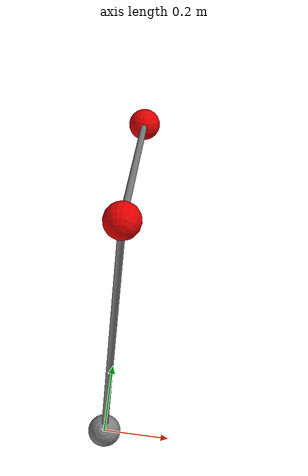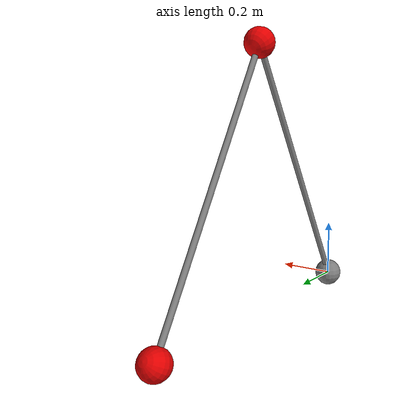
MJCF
<mujoco>
  <option gravity="0 0 -10" timestep="0.001">
  </option>

  <default>
    <geom rgba=".9 .0 .0 1"/>
  </default>

  <worldbody>
    <light pos="100 0 0" dir="-1 0 0" diffuse="1 1 1" cutoff="180"/>
    <site type="sphere" size="0.05" name="origin"/>

    <body pos="0 0 0" euler="60 0 0">
      <geom type="sphere" size="0.05" mass="1" pos="0 1 0"/>
      <site type="cylinder" size="0.01 0.5" pos="0 0.5 0" euler="90 0 0"/>
      <joint type="hinge" axis="1 0 0" pos="0 0 0"/>

      <body pos="0 1 0" euler="-120 0 0">
        <geom type="sphere" size="0.05" mass="1" pos="0 1 0"/>
        <site type="sphere" size="0.01" name="second"/>
        <site type="cylinder" size="0.01 0.5" pos="0 0.5 0" euler="90 0 0"/>
        <joint type="hinge" axis="1 0 0" pos="0 0 0"/>
      </body>
    </body>
  </worldbody>
</mujoco>
